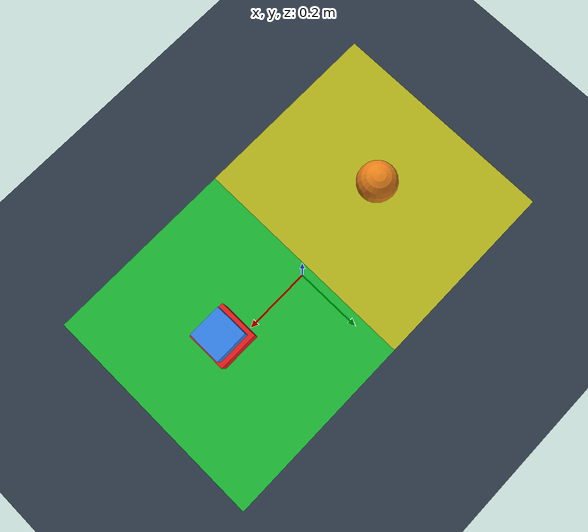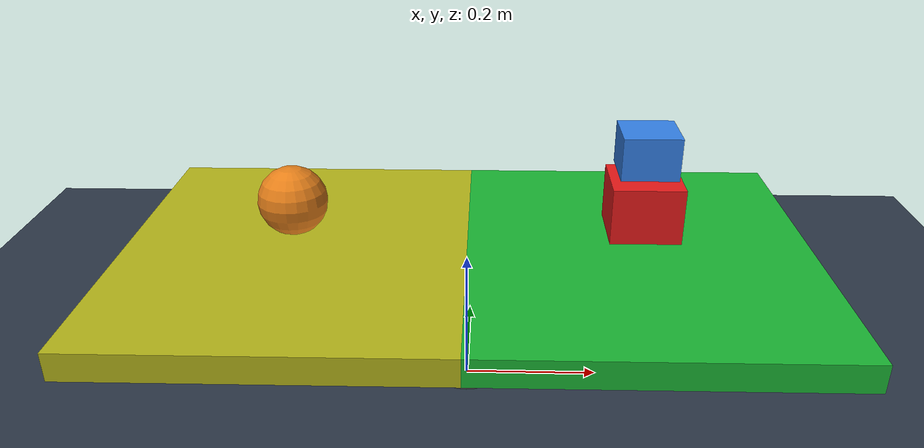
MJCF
<mujoco model="friction_carousel">
  <compiler angle="radian"/>
  <option timestep="0.002" integrator="Euler" iterations="600" tolerance="1e-4" gravity="0 0 -9.81" cone="elliptic"/>
  <asset>
    <texture name="floor_grid" type="2d" builtin="checker" rgb1="0.12 0.15 0.20" rgb2="0.22 0.28 0.35" width="512" height="512"/>
    <material name="floor_material" texture="floor_grid" texrepeat="8 8" reflectance="0.1"/>
  </asset>
  <worldbody>
    <light directional="true" pos="0 -2 5" dir="0 0.3 -1" diffuse="0.9 0.9 0.9" specular="0.3 0.3 0.3"/>
    <geom name="floor" type="plane" size="5 5 0.1" pos="0 0 -0.02" material="floor_material" contype="32" conaffinity="16"/>
    <body name="turntable" pos="0 0 0">
      <joint name="spin" type="hinge" axis="0 0 1" damping="0.5"/>
      <geom name="hub" type="cylinder" size="0.05 0.1" pos="0 0 0.1" rgba="0.3 0.3 0.3 1" mass="0.5" contype="0" conaffinity="0"/>
      <geom name="grip_high" type="box" size="0.25 0.3 0.02" pos="0.25 0 0.2" rgba="0.1 0.7 0.2 1" mass="0.4" friction="0.5 0.05 0.02" contype="1" conaffinity="2" condim="3"/>
      <geom name="grip_low" type="box" size="0.25 0.3 0.02" pos="-0.25 0 0.2" rgba="0.7 0.7 0.1 1" mass="0.4" friction="0.01 0.05 0.02" contype="8" conaffinity="16" condim="3"/>
    </body>
    <body name="rider_high" pos="0.25 0 0.29">
      <freejoint name="freeRH"/>
      <geom name="rider_high_geom" type="box" size="0.05 0.05 0.04" rgba="0.9 0.1 0.1 1" mass="0.3" friction="0.6 0.05 0.02" contype="2" conaffinity="5" condim="3"/>
    </body>
    <body name="rider_low" pos="-0.25 0 0.29">
      <freejoint name="freeRL"/>
      <geom name="rider_low_geom" type="sphere" size="0.05" rgba="0.9 0.5 0.1 1" mass="0.3" friction="0.6 0.05 0.02" contype="16" conaffinity="40" condim="3"/>
    </body>
    <body name="stacker" pos="0.25 0 0.37">
      <freejoint name="freeS"/>
      <geom name="stacker_geom" type="box" size="0.04 0.04 0.03" rgba="0.2 0.5 0.9 1" mass="0.15" friction="0.6 0.05 0.02" contype="4" conaffinity="2" condim="3"/>
    </body>
  </worldbody>
  <contact>
    <pair geom1="grip_high" geom2="rider_high_geom" condim="3" friction="1.0 0.05 0.02"/>
    <pair geom1="grip_low" geom2="rider_low_geom" condim="3" friction="0.001 0.05 0.02"/>
    <pair geom1="rider_high_geom" geom2="stacker_geom" condim="3"/>
    <exclude body1="stacker" body2="turntable"/>
  </contact>
  <actuator>
    <motor name="drive" joint="spin" gear="1"/>
  </actuator>
</mujoco>
